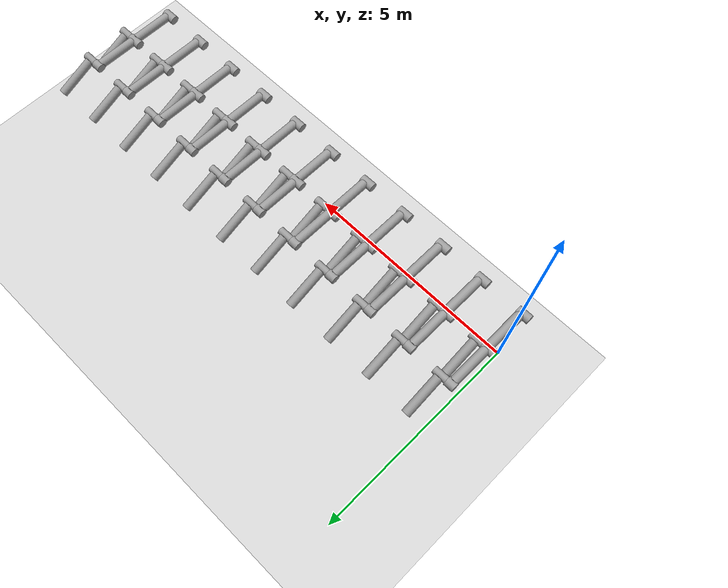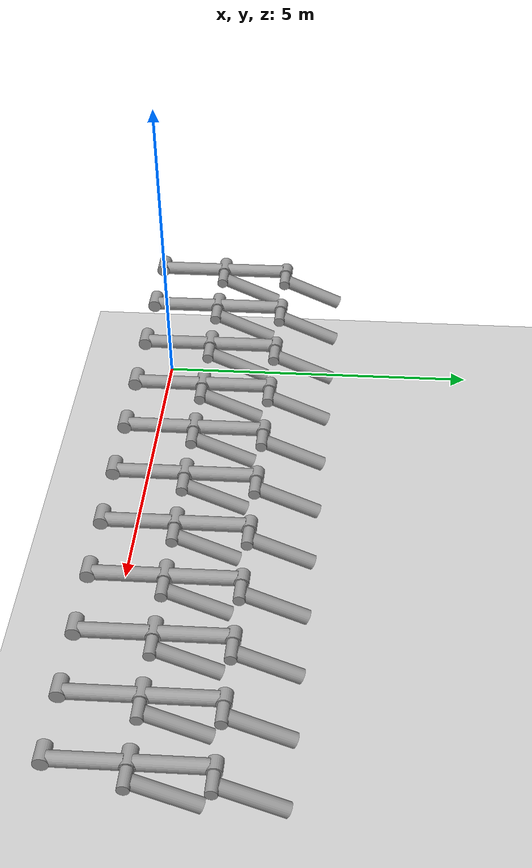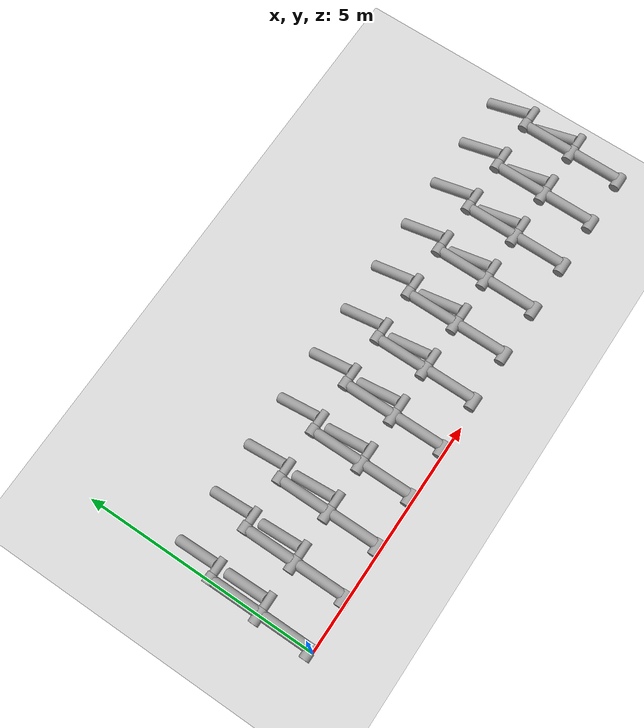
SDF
<sdf version="1.4">
 <world name="default">
  <model name="ground_plane">
   <static>true</static>
   <link name="link">
    <collision name="collision">
     <geometry><plane><normal>0 0 1</normal><size>100 100</size></plane></geometry>
     <surface><friction><ode><mu>100</mu><mu2>50</mu2></ode></friction></surface>
    </collision>
    <visual name="visual">
     <cast_shadows>false</cast_shadows>
     <geometry><plane><normal>0 0 1</normal><size>100 100</size></plane></geometry>
     <material>
      <script><uri>file://media/materials/scripts/gazebo.material</uri><name>Gazebo/Grey</name></script>
     </material>
    </visual>
   </link>
  </model>
  <model name="double_pendulum_with_base">
   <link name="upper_link">
    <pose>0 0 2.1  -1.5708 0 0</pose>
    <inertial><pose>0 0 0.5  0 0 0</pose></inertial>
    <visual name="vis_upper_joint">
     <pose>-0.05 0 0  0 1.5708 0</pose>
     <geometry><cylinder><radius>0.1</radius><length>0.3</length></cylinder></geometry>
     <material>
      <script><uri>file://media/materials/scripts/gazebo.material</uri><name>Gazebo/Grey</name></script>
     </material>
    </visual>
    <visual name="vis_lower_joint">
     <pose>0 0 1.0  0 1.5708 0</pose>
     <geometry><cylinder><radius>0.1</radius><length>0.2</length></cylinder></geometry>
     <material>
      <script><uri>file://media/materials/scripts/gazebo.material</uri><name>Gazebo/Grey</name></script>
     </material>
    </visual>
    <visual name="vis_cylinder">
     <pose>0 0 0.5  0 0 0</pose>
     <geometry><cylinder><radius>0.1</radius><length>0.9</length></cylinder></geometry>
     <material>
      <script><uri>file://media/materials/scripts/gazebo.material</uri><name>Gazebo/Grey</name></script>
     </material>
    </visual>
   </link>
   <link name="lower_link">
    <pose>0.25 1.0 2.1  -2 0 0</pose>
    <inertial><pose>0 0 0.5  0 0 0</pose></inertial>
    <visual name="vis_lower_joint">
     <pose>0 0 0  0 1.5708 0</pose>
     <geometry><cylinder><radius>0.08</radius><length>0.3</length></cylinder></geometry>
     <material>
      <script><uri>file://media/materials/scripts/gazebo.material</uri><name>Gazebo/Grey</name></script>
     </material>
    </visual>
    <visual name="vis_cylinder">
     <pose>0 0 0.5  0 0 0</pose>
     <geometry><cylinder><radius>0.1</radius><length>0.9</length></cylinder></geometry>
     <material>
      <script><uri>file://media/materials/scripts/gazebo.material</uri><name>Gazebo/Grey</name></script>
     </material>
    </visual>
   </link>
   <joint name="upper_joint" type="revolute">
    <parent>world</parent>
    <child>upper_link</child>
    <axis><xyz>1.0 0 0</xyz></axis>
   </joint>
   <joint name="lower_joint" type="revolute">
    <parent>upper_link</parent>
    <child>lower_link</child>
    <axis><xyz>1.0 0 0</xyz></axis>
   </joint>
  </model>
  <model name="double_pendulum_with_base1">
   <pose>1 0 0 0 0 0</pose>
   <link name="upper_link">
    <pose>0 0 2.1  -1.5708 0 0</pose>
    <inertial><pose>0 0 0.5  0 0 0</pose></inertial>
    <visual name="vis_upper_joint">
     <pose>-0.05 0 0  0 1.5708 0</pose>
     <geometry><cylinder><radius>0.1</radius><length>0.3</length></cylinder></geometry>
     <material>
      <script><uri>file://media/materials/scripts/gazebo.material</uri><name>Gazebo/Grey</name></script>
     </material>
    </visual>
    <visual name="vis_lower_joint">
     <pose>0 0 1.0  0 1.5708 0</pose>
     <geometry><cylinder><radius>0.1</radius><length>0.2</length></cylinder></geometry>
     <material>
      <script><uri>file://media/materials/scripts/gazebo.material</uri><name>Gazebo/Grey</name></script>
     </material>
    </visual>
    <visual name="vis_cylinder">
     <pose>0 0 0.5  0 0 0</pose>
     <geometry><cylinder><radius>0.1</radius><length>0.9</length></cylinder></geometry>
     <material>
      <script><uri>file://media/materials/scripts/gazebo.material</uri><name>Gazebo/Grey</name></script>
     </material>
    </visual>
   </link>
   <link name="lower_link">
    <pose>0.25 1.0 2.1  -2 0 0</pose>
    <inertial><pose>0 0 0.5  0 0 0</pose></inertial>
    <visual name="vis_lower_joint">
     <pose>0 0 0  0 1.5708 0</pose>
     <geometry><cylinder><radius>0.08</radius><length>0.3</length></cylinder></geometry>
     <material>
      <script><uri>file://media/materials/scripts/gazebo.material</uri><name>Gazebo/Grey</name></script>
     </material>
    </visual>
    <visual name="vis_cylinder">
     <pose>0 0 0.5  0 0 0</pose>
     <geometry><cylinder><radius>0.1</radius><length>0.9</length></cylinder></geometry>
     <material>
      <script><uri>file://media/materials/scripts/gazebo.material</uri><name>Gazebo/Grey</name></script>
     </material>
    </visual>
   </link>
   <joint name="upper_joint" type="revolute">
    <parent>world</parent>
    <child>upper_link</child>
    <axis><xyz>1.0 0 0</xyz></axis>
   </joint>
   <joint name="lower_joint" type="revolute">
    <parent>upper_link</parent>
    <child>lower_link</child>
    <axis><xyz>1.0 0 0</xyz></axis>
   </joint>
  </model>
  <model name="double_pendulum_with_base2">
   <pose>2 0 0 0 0 0</pose>
   <link name="upper_link">
    <pose>0 0 2.1  -1.5708 0 0</pose>
    <inertial><pose>0 0 0.5  0 0 0</pose></inertial>
    <visual name="vis_upper_joint">
     <pose>-0.05 0 0  0 1.5708 0</pose>
     <geometry><cylinder><radius>0.1</radius><length>0.3</length></cylinder></geometry>
     <material>
      <script><uri>file://media/materials/scripts/gazebo.material</uri><name>Gazebo/Grey</name></script>
     </material>
    </visual>
    <visual name="vis_lower_joint">
     <pose>0 0 1.0  0 1.5708 0</pose>
     <geometry><cylinder><radius>0.1</radius><length>0.2</length></cylinder></geometry>
     <material>
      <script><uri>file://media/materials/scripts/gazebo.material</uri><name>Gazebo/Grey</name></script>
     </material>
    </visual>
    <visual name="vis_cylinder">
     <pose>0 0 0.5  0 0 0</pose>
     <geometry><cylinder><radius>0.1</radius><length>0.9</length></cylinder></geometry>
     <material>
      <script><uri>file://media/materials/scripts/gazebo.material</uri><name>Gazebo/Grey</name></script>
     </material>
    </visual>
   </link>
   <link name="lower_link">
    <pose>0.25 1.0 2.1  -2 0 0</pose>
    <inertial><pose>0 0 0.5  0 0 0</pose></inertial>
    <visual name="vis_lower_joint">
     <pose>0 0 0  0 1.5708 0</pose>
     <geometry><cylinder><radius>0.08</radius><length>0.3</length></cylinder></geometry>
     <material>
      <script><uri>file://media/materials/scripts/gazebo.material</uri><name>Gazebo/Grey</name></script>
     </material>
    </visual>
    <visual name="vis_cylinder">
     <pose>0 0 0.5  0 0 0</pose>
     <geometry><cylinder><radius>0.1</radius><length>0.9</length></cylinder></geometry>
     <material>
      <script><uri>file://media/materials/scripts/gazebo.material</uri><name>Gazebo/Grey</name></script>
     </material>
    </visual>
   </link>
   <joint name="upper_joint" type="revolute">
    <parent>world</parent>
    <child>upper_link</child>
    <axis><xyz>1.0 0 0</xyz></axis>
   </joint>
   <joint name="lower_joint" type="revolute">
    <parent>upper_link</parent>
    <child>lower_link</child>
    <axis><xyz>1.0 0 0</xyz></axis>
   </joint>
  </model>
  <model name="double_pendulum_with_base3">
   <pose>3 0 0 0 0 0</pose>
   <link name="upper_link">
    <pose>0 0 2.1  -1.5708 0 0</pose>
    <inertial><pose>0 0 0.5  0 0 0</pose></inertial>
    <visual name="vis_upper_joint">
     <pose>-0.05 0 0  0 1.5708 0</pose>
     <geometry><cylinder><radius>0.1</radius><length>0.3</length></cylinder></geometry>
     <material>
      <script><uri>file://media/materials/scripts/gazebo.material</uri><name>Gazebo/Grey</name></script>
     </material>
    </visual>
    <visual name="vis_lower_joint">
     <pose>0 0 1.0  0 1.5708 0</pose>
     <geometry><cylinder><radius>0.1</radius><length>0.2</length></cylinder></geometry>
     <material>
      <script><uri>file://media/materials/scripts/gazebo.material</uri><name>Gazebo/Grey</name></script>
     </material>
    </visual>
    <visual name="vis_cylinder">
     <pose>0 0 0.5  0 0 0</pose>
     <geometry><cylinder><radius>0.1</radius><length>0.9</length></cylinder></geometry>
     <material>
      <script><uri>file://media/materials/scripts/gazebo.material</uri><name>Gazebo/Grey</name></script>
     </material>
    </visual>
   </link>
   <link name="lower_link">
    <pose>0.25 1.0 2.1  -2 0 0</pose>
    <inertial><pose>0 0 0.5  0 0 0</pose></inertial>
    <visual name="vis_lower_joint">
     <pose>0 0 0  0 1.5708 0</pose>
     <geometry><cylinder><radius>0.08</radius><length>0.3</length></cylinder></geometry>
     <material>
      <script><uri>file://media/materials/scripts/gazebo.material</uri><name>Gazebo/Grey</name></script>
     </material>
    </visual>
    <visual name="vis_cylinder">
     <pose>0 0 0.5  0 0 0</pose>
     <geometry><cylinder><radius>0.1</radius><length>0.9</length></cylinder></geometry>
     <material>
      <script><uri>file://media/materials/scripts/gazebo.material</uri><name>Gazebo/Grey</name></script>
     </material>
    </visual>
   </link>
   <joint name="upper_joint" type="revolute">
    <parent>world</parent>
    <child>upper_link</child>
    <axis><xyz>1.0 0 0</xyz></axis>
   </joint>
   <joint name="lower_joint" type="revolute">
    <parent>upper_link</parent>
    <child>lower_link</child>
    <axis><xyz>1.0 0 0</xyz></axis>
   </joint>
  </model>
  <model name="double_pendulum_with_base4">
   <pose>4 0 0 0 0 0</pose>
   <link name="upper_link">
    <pose>0 0 2.1  -1.5708 0 0</pose>
    <inertial><pose>0 0 0.5  0 0 0</pose></inertial>
    <visual name="vis_upper_joint">
     <pose>-0.05 0 0  0 1.5708 0</pose>
     <geometry><cylinder><radius>0.1</radius><length>0.3</length></cylinder></geometry>
     <material>
      <script><uri>file://media/materials/scripts/gazebo.material</uri><name>Gazebo/Grey</name></script>
     </material>
    </visual>
    <visual name="vis_lower_joint">
     <pose>0 0 1.0  0 1.5708 0</pose>
     <geometry><cylinder><radius>0.1</radius><length>0.2</length></cylinder></geometry>
     <material>
      <script><uri>file://media/materials/scripts/gazebo.material</uri><name>Gazebo/Grey</name></script>
     </material>
    </visual>
    <visual name="vis_cylinder">
     <pose>0 0 0.5  0 0 0</pose>
     <geometry><cylinder><radius>0.1</radius><length>0.9</length></cylinder></geometry>
     <material>
      <script><uri>file://media/materials/scripts/gazebo.material</uri><name>Gazebo/Grey</name></script>
     </material>
    </visual>
   </link>
   <link name="lower_link">
    <pose>0.25 1.0 2.1  -2 0 0</pose>
    <inertial><pose>0 0 0.5  0 0 0</pose></inertial>
    <visual name="vis_lower_joint">
     <pose>0 0 0  0 1.5708 0</pose>
     <geometry><cylinder><radius>0.08</radius><length>0.3</length></cylinder></geometry>
     <material>
      <script><uri>file://media/materials/scripts/gazebo.material</uri><name>Gazebo/Grey</name></script>
     </material>
    </visual>
    <visual name="vis_cylinder">
     <pose>0 0 0.5  0 0 0</pose>
     <geometry><cylinder><radius>0.1</radius><length>0.9</length></cylinder></geometry>
     <material>
      <script><uri>file://media/materials/scripts/gazebo.material</uri><name>Gazebo/Grey</name></script>
     </material>
    </visual>
   </link>
   <joint name="upper_joint" type="revolute">
    <parent>world</parent>
    <child>upper_link</child>
    <axis><xyz>1.0 0 0</xyz></axis>
   </joint>
   <joint name="lower_joint" type="revolute">
    <parent>upper_link</parent>
    <child>lower_link</child>
    <axis><xyz>1.0 0 0</xyz></axis>
   </joint>
  </model>
  <model name="double_pendulum_with_base5">
   <pose>5 0 0 0 0 0</pose>
   <link name="upper_link">
    <pose>0 0 2.1  -1.5708 0 0</pose>
    <inertial><pose>0 0 0.5  0 0 0</pose></inertial>
    <visual name="vis_upper_joint">
     <pose>-0.05 0 0  0 1.5708 0</pose>
     <geometry><cylinder><radius>0.1</radius><length>0.3</length></cylinder></geometry>
     <material>
      <script><uri>file://media/materials/scripts/gazebo.material</uri><name>Gazebo/Grey</name></script>
     </material>
    </visual>
    <visual name="vis_lower_joint">
     <pose>0 0 1.0  0 1.5708 0</pose>
     <geometry><cylinder><radius>0.1</radius><length>0.2</length></cylinder></geometry>
     <material>
      <script><uri>file://media/materials/scripts/gazebo.material</uri><name>Gazebo/Grey</name></script>
     </material>
    </visual>
    <visual name="vis_cylinder">
     <pose>0 0 0.5  0 0 0</pose>
     <geometry><cylinder><radius>0.1</radius><length>0.9</length></cylinder></geometry>
     <material>
      <script><uri>file://media/materials/scripts/gazebo.material</uri><name>Gazebo/Grey</name></script>
     </material>
    </visual>
   </link>
   <link name="lower_link">
    <pose>0.25 1.0 2.1  -2 0 0</pose>
    <inertial><pose>0 0 0.5  0 0 0</pose></inertial>
    <visual name="vis_lower_joint">
     <pose>0 0 0  0 1.5708 0</pose>
     <geometry><cylinder><radius>0.08</radius><length>0.3</length></cylinder></geometry>
     <material>
      <script><uri>file://media/materials/scripts/gazebo.material</uri><name>Gazebo/Grey</name></script>
     </material>
    </visual>
    <visual name="vis_cylinder">
     <pose>0 0 0.5  0 0 0</pose>
     <geometry><cylinder><radius>0.1</radius><length>0.9</length></cylinder></geometry>
     <material>
      <script><uri>file://media/materials/scripts/gazebo.material</uri><name>Gazebo/Grey</name></script>
     </material>
    </visual>
   </link>
   <joint name="upper_joint" type="revolute">
    <parent>world</parent>
    <child>upper_link</child>
    <axis><xyz>1.0 0 0</xyz></axis>
   </joint>
   <joint name="lower_joint" type="revolute">
    <parent>upper_link</parent>
    <child>lower_link</child>
    <axis><xyz>1.0 0 0</xyz></axis>
   </joint>
  </model>
  <model name="double_pendulum_with_base6">
   <pose>6 0 0 0 0 0</pose>
   <link name="upper_link">
    <pose>0 0 2.1  -1.5708 0 0</pose>
    <inertial><pose>0 0 0.5  0 0 0</pose></inertial>
    <visual name="vis_upper_joint">
     <pose>-0.05 0 0  0 1.5708 0</pose>
     <geometry><cylinder><radius>0.1</radius><length>0.3</length></cylinder></geometry>
     <material>
      <script><uri>file://media/materials/scripts/gazebo.material</uri><name>Gazebo/Grey</name></script>
     </material>
    </visual>
    <visual name="vis_lower_joint">
     <pose>0 0 1.0  0 1.5708 0</pose>
     <geometry><cylinder><radius>0.1</radius><length>0.2</length></cylinder></geometry>
     <material>
      <script><uri>file://media/materials/scripts/gazebo.material</uri><name>Gazebo/Grey</name></script>
     </material>
    </visual>
    <visual name="vis_cylinder">
     <pose>0 0 0.5  0 0 0</pose>
     <geometry><cylinder><radius>0.1</radius><length>0.9</length></cylinder></geometry>
     <material>
      <script><uri>file://media/materials/scripts/gazebo.material</uri><name>Gazebo/Grey</name></script>
     </material>
    </visual>
   </link>
   <link name="lower_link">
    <pose>0.25 1.0 2.1  -2 0 0</pose>
    <inertial><pose>0 0 0.5  0 0 0</pose></inertial>
    <visual name="vis_lower_joint">
     <pose>0 0 0  0 1.5708 0</pose>
     <geometry><cylinder><radius>0.08</radius><length>0.3</length></cylinder></geometry>
     <material>
      <script><uri>file://media/materials/scripts/gazebo.material</uri><name>Gazebo/Grey</name></script>
     </material>
    </visual>
    <visual name="vis_cylinder">
     <pose>0 0 0.5  0 0 0</pose>
     <geometry><cylinder><radius>0.1</radius><length>0.9</length></cylinder></geometry>
     <material>
      <script><uri>file://media/materials/scripts/gazebo.material</uri><name>Gazebo/Grey</name></script>
     </material>
    </visual>
   </link>
   <joint name="upper_joint" type="revolute">
    <parent>world</parent>
    <child>upper_link</child>
    <axis><xyz>1.0 0 0</xyz></axis>
   </joint>
   <joint name="lower_joint" type="revolute">
    <parent>upper_link</parent>
    <child>lower_link</child>
    <axis><xyz>1.0 0 0</xyz></axis>
   </joint>
  </model>
  <model name="double_pendulum_with_base7">
   <pose>7 0 0 0 0 0</pose>
   <link name="upper_link">
    <pose>0 0 2.1  -1.5708 0 0</pose>
    <inertial><pose>0 0 0.5  0 0 0</pose></inertial>
    <visual name="vis_upper_joint">
     <pose>-0.05 0 0  0 1.5708 0</pose>
     <geometry><cylinder><radius>0.1</radius><length>0.3</length></cylinder></geometry>
     <material>
      <script><uri>file://media/materials/scripts/gazebo.material</uri><name>Gazebo/Grey</name></script>
     </material>
    </visual>
    <visual name="vis_lower_joint">
     <pose>0 0 1.0  0 1.5708 0</pose>
     <geometry><cylinder><radius>0.1</radius><length>0.2</length></cylinder></geometry>
     <material>
      <script><uri>file://media/materials/scripts/gazebo.material</uri><name>Gazebo/Grey</name></script>
     </material>
    </visual>
    <visual name="vis_cylinder">
     <pose>0 0 0.5  0 0 0</pose>
     <geometry><cylinder><radius>0.1</radius><length>0.9</length></cylinder></geometry>
     <material>
      <script><uri>file://media/materials/scripts/gazebo.material</uri><name>Gazebo/Grey</name></script>
     </material>
    </visual>
   </link>
   <link name="lower_link">
    <pose>0.25 1.0 2.1  -2 0 0</pose>
    <inertial><pose>0 0 0.5  0 0 0</pose></inertial>
    <visual name="vis_lower_joint">
     <pose>0 0 0  0 1.5708 0</pose>
     <geometry><cylinder><radius>0.08</radius><length>0.3</length></cylinder></geometry>
     <material>
      <script><uri>file://media/materials/scripts/gazebo.material</uri><name>Gazebo/Grey</name></script>
     </material>
    </visual>
    <visual name="vis_cylinder">
     <pose>0 0 0.5  0 0 0</pose>
     <geometry><cylinder><radius>0.1</radius><length>0.9</length></cylinder></geometry>
     <material>
      <script><uri>file://media/materials/scripts/gazebo.material</uri><name>Gazebo/Grey</name></script>
     </material>
    </visual>
   </link>
   <joint name="upper_joint" type="revolute">
    <parent>world</parent>
    <child>upper_link</child>
    <axis><xyz>1.0 0 0</xyz></axis>
   </joint>
   <joint name="lower_joint" type="revolute">
    <parent>upper_link</parent>
    <child>lower_link</child>
    <axis><xyz>1.0 0 0</xyz></axis>
   </joint>
  </model>
  <model name="double_pendulum_with_base8">
   <pose>8 0 0 0 0 0</pose>
   <link name="upper_link">
    <pose>0 0 2.1  -1.5708 0 0</pose>
    <inertial><pose>0 0 0.5  0 0 0</pose></inertial>
    <visual name="vis_upper_joint">
     <pose>-0.05 0 0  0 1.5708 0</pose>
     <geometry><cylinder><radius>0.1</radius><length>0.3</length></cylinder></geometry>
     <material>
      <script><uri>file://media/materials/scripts/gazebo.material</uri><name>Gazebo/Grey</name></script>
     </material>
    </visual>
    <visual name="vis_lower_joint">
     <pose>0 0 1.0  0 1.5708 0</pose>
     <geometry><cylinder><radius>0.1</radius><length>0.2</length></cylinder></geometry>
     <material>
      <script><uri>file://media/materials/scripts/gazebo.material</uri><name>Gazebo/Grey</name></script>
     </material>
    </visual>
    <visual name="vis_cylinder">
     <pose>0 0 0.5  0 0 0</pose>
     <geometry><cylinder><radius>0.1</radius><length>0.9</length></cylinder></geometry>
     <material>
      <script><uri>file://media/materials/scripts/gazebo.material</uri><name>Gazebo/Grey</name></script>
     </material>
    </visual>
   </link>
   <link name="lower_link">
    <pose>0.25 1.0 2.1  -2 0 0</pose>
    <inertial><pose>0 0 0.5  0 0 0</pose></inertial>
    <visual name="vis_lower_joint">
     <pose>0 0 0  0 1.5708 0</pose>
     <geometry><cylinder><radius>0.08</radius><length>0.3</length></cylinder></geometry>
     <material>
      <script><uri>file://media/materials/scripts/gazebo.material</uri><name>Gazebo/Grey</name></script>
     </material>
    </visual>
    <visual name="vis_cylinder">
     <pose>0 0 0.5  0 0 0</pose>
     <geometry><cylinder><radius>0.1</radius><length>0.9</length></cylinder></geometry>
     <material>
      <script><uri>file://media/materials/scripts/gazebo.material</uri><name>Gazebo/Grey</name></script>
     </material>
    </visual>
   </link>
   <joint name="upper_joint" type="revolute">
    <parent>world</parent>
    <child>upper_link</child>
    <axis><xyz>1.0 0 0</xyz></axis>
   </joint>
   <joint name="lower_joint" type="revolute">
    <parent>upper_link</parent>
    <child>lower_link</child>
    <axis><xyz>1.0 0 0</xyz></axis>
   </joint>
  </model>
  <model name="double_pendulum_with_base9">
   <pose>9 0 0 0 0 0</pose>
   <link name="upper_link">
    <pose>0 0 2.1  -1.5708 0 0</pose>
    <inertial><pose>0 0 0.5  0 0 0</pose></inertial>
    <visual name="vis_upper_joint">
     <pose>-0.05 0 0  0 1.5708 0</pose>
     <geometry><cylinder><radius>0.1</radius><length>0.3</length></cylinder></geometry>
     <material>
      <script><uri>file://media/materials/scripts/gazebo.material</uri><name>Gazebo/Grey</name></script>
     </material>
    </visual>
    <visual name="vis_lower_joint">
     <pose>0 0 1.0  0 1.5708 0</pose>
     <geometry><cylinder><radius>0.1</radius><length>0.2</length></cylinder></geometry>
     <material>
      <script><uri>file://media/materials/scripts/gazebo.material</uri><name>Gazebo/Grey</name></script>
     </material>
    </visual>
    <visual name="vis_cylinder">
     <pose>0 0 0.5  0 0 0</pose>
     <geometry><cylinder><radius>0.1</radius><length>0.9</length></cylinder></geometry>
     <material>
      <script><uri>file://media/materials/scripts/gazebo.material</uri><name>Gazebo/Grey</name></script>
     </material>
    </visual>
   </link>
   <link name="lower_link">
    <pose>0.25 1.0 2.1  -2 0 0</pose>
    <inertial><pose>0 0 0.5  0 0 0</pose></inertial>
    <visual name="vis_lower_joint">
     <pose>0 0 0  0 1.5708 0</pose>
     <geometry><cylinder><radius>0.08</radius><length>0.3</length></cylinder></geometry>
     <material>
      <script><uri>file://media/materials/scripts/gazebo.material</uri><name>Gazebo/Grey</name></script>
     </material>
    </visual>
    <visual name="vis_cylinder">
     <pose>0 0 0.5  0 0 0</pose>
     <geometry><cylinder><radius>0.1</radius><length>0.9</length></cylinder></geometry>
     <material>
      <script><uri>file://media/materials/scripts/gazebo.material</uri><name>Gazebo/Grey</name></script>
     </material>
    </visual>
   </link>
   <joint name="upper_joint" type="revolute">
    <parent>world</parent>
    <child>upper_link</child>
    <axis><xyz>1.0 0 0</xyz></axis>
   </joint>
   <joint name="lower_joint" type="revolute">
    <parent>upper_link</parent>
    <child>lower_link</child>
    <axis><xyz>1.0 0 0</xyz></axis>
   </joint>
  </model>
  <model name="double_pendulum_with_base10">
   <pose>10 0 0 0 0 0</pose>
   <link name="upper_link">
    <pose>0 0 2.1  -1.5708 0 0</pose>
    <inertial><pose>0 0 0.5  0 0 0</pose></inertial>
    <visual name="vis_upper_joint">
     <pose>-0.05 0 0  0 1.5708 0</pose>
     <geometry><cylinder><radius>0.1</radius><length>0.3</length></cylinder></geometry>
     <material>
      <script><uri>file://media/materials/scripts/gazebo.material</uri><name>Gazebo/Grey</name></script>
     </material>
    </visual>
    <visual name="vis_lower_joint">
     <pose>0 0 1.0  0 1.5708 0</pose>
     <geometry><cylinder><radius>0.1</radius><length>0.2</length></cylinder></geometry>
     <material>
      <script><uri>file://media/materials/scripts/gazebo.material</uri><name>Gazebo/Grey</name></script>
     </material>
    </visual>
    <visual name="vis_cylinder">
     <pose>0 0 0.5  0 0 0</pose>
     <geometry><cylinder><radius>0.1</radius><length>0.9</length></cylinder></geometry>
     <material>
      <script><uri>file://media/materials/scripts/gazebo.material</uri><name>Gazebo/Grey</name></script>
     </material>
    </visual>
   </link>
   <link name="lower_link">
    <pose>0.25 1.0 2.1  -2 0 0</pose>
    <inertial><pose>0 0 0.5  0 0 0</pose></inertial>
    <visual name="vis_lower_joint">
     <pose>0 0 0  0 1.5708 0</pose>
     <geometry><cylinder><radius>0.08</radius><length>0.3</length></cylinder></geometry>
     <material>
      <script><uri>file://media/materials/scripts/gazebo.material</uri><name>Gazebo/Grey</name></script>
     </material>
    </visual>
    <visual name="vis_cylinder">
     <pose>0 0 0.5  0 0 0</pose>
     <geometry><cylinder><radius>0.1</radius><length>0.9</length></cylinder></geometry>
     <material>
      <script><uri>file://media/materials/scripts/gazebo.material</uri><name>Gazebo/Grey</name></script>
     </material>
    </visual>
   </link>
   <joint name="upper_joint" type="revolute">
    <parent>world</parent>
    <child>upper_link</child>
    <axis><xyz>1.0 0 0</xyz></axis>
   </joint>
   <joint name="lower_joint" type="revolute">
    <parent>upper_link</parent>
    <child>lower_link</child>
    <axis><xyz>1.0 0 0</xyz></axis>
   </joint>
  </model>
  <model name="double_pendulum_with_baseb">
   <pose>0 1 0 0 0 0</pose>
   <link name="upper_link">
    <pose>0 0 2.1  -1.5708 0 0</pose>
    <inertial><pose>0 0 0.5  0 0 0</pose></inertial>
    <visual name="vis_upper_joint">
     <pose>-0.05 0 0  0 1.5708 0</pose>
     <geometry><cylinder><radius>0.1</radius><length>0.3</length></cylinder></geometry>
     <material>
      <script><uri>file://media/materials/scripts/gazebo.material</uri><name>Gazebo/Grey</name></script>
     </material>
    </visual>
    <visual name="vis_lower_joint">
     <pose>0 0 1.0  0 1.5708 0</pose>
     <geometry><cylinder><radius>0.1</radius><length>0.2</length></cylinder></geometry>
     <material>
      <script><uri>file://media/materials/scripts/gazebo.material</uri><name>Gazebo/Grey</name></script>
     </material>
    </visual>
    <visual name="vis_cylinder">
     <pose>0 0 0.5  0 0 0</pose>
     <geometry><cylinder><radius>0.1</radius><length>0.9</length></cylinder></geometry>
     <material>
      <script><uri>file://media/materials/scripts/gazebo.material</uri><name>Gazebo/Grey</name></script>
     </material>
    </visual>
   </link>
   <link name="lower_link">
    <pose>0.25 1.0 2.1  -2 0 0</pose>
    <inertial><pose>0 0 0.5  0 0 0</pose></inertial>
    <visual name="vis_lower_joint">
     <pose>0 0 0  0 1.5708 0</pose>
     <geometry><cylinder><radius>0.08</radius><length>0.3</length></cylinder></geometry>
     <material>
      <script><uri>file://media/materials/scripts/gazebo.material</uri><name>Gazebo/Grey</name></script>
     </material>
    </visual>
    <visual name="vis_cylinder">
     <pose>0 0 0.5  0 0 0</pose>
     <geometry><cylinder><radius>0.1</radius><length>0.9</length></cylinder></geometry>
     <material>
      <script><uri>file://media/materials/scripts/gazebo.material</uri><name>Gazebo/Grey</name></script>
     </material>
    </visual>
   </link>
   <joint name="upper_joint" type="revolute">
    <parent>world</parent>
    <child>upper_link</child>
    <axis><xyz>1.0 0 0</xyz></axis>
   </joint>
   <joint name="lower_joint" type="revolute">
    <parent>upper_link</parent>
    <child>lower_link</child>
    <axis><xyz>1.0 0 0</xyz></axis>
   </joint>
  </model>
  <model name="double_pendulum_with_base1b">
   <pose>1 1 0 0 0 0</pose>
   <link name="upper_link">
    <pose>0 0 2.1  -1.5708 0 0</pose>
    <inertial><pose>0 0 0.5  0 0 0</pose></inertial>
    <visual name="vis_upper_joint">
     <pose>-0.05 0 0  0 1.5708 0</pose>
     <geometry><cylinder><radius>0.1</radius><length>0.3</length></cylinder></geometry>
     <material>
      <script><uri>file://media/materials/scripts/gazebo.material</uri><name>Gazebo/Grey</name></script>
     </material>
    </visual>
    <visual name="vis_lower_joint">
     <pose>0 0 1.0  0 1.5708 0</pose>
     <geometry><cylinder><radius>0.1</radius><length>0.2</length></cylinder></geometry>
     <material>
      <script><uri>file://media/materials/scripts/gazebo.material</uri><name>Gazebo/Grey</name></script>
     </material>
    </visual>
    <visual name="vis_cylinder">
     <pose>0 0 0.5  0 0 0</pose>
     <geometry><cylinder><radius>0.1</radius><length>0.9</length></cylinder></geometry>
     <material>
      <script><uri>file://media/materials/scripts/gazebo.material</uri><name>Gazebo/Grey</name></script>
     </material>
    </visual>
   </link>
   <link name="lower_link">
    <pose>0.25 1.0 2.1  -2 0 0</pose>
    <inertial><pose>0 0 0.5  0 0 0</pose></inertial>
    <visual name="vis_lower_joint">
     <pose>0 0 0  0 1.5708 0</pose>
     <geometry><cylinder><radius>0.08</radius><length>0.3</length></cylinder></geometry>
     <material>
      <script><uri>file://media/materials/scripts/gazebo.material</uri><name>Gazebo/Grey</name></script>
     </material>
    </visual>
    <visual name="vis_cylinder">
     <pose>0 0 0.5  0 0 0</pose>
     <geometry><cylinder><radius>0.1</radius><length>0.9</length></cylinder></geometry>
     <material>
      <script><uri>file://media/materials/scripts/gazebo.material</uri><name>Gazebo/Grey</name></script>
     </material>
    </visual>
   </link>
   <joint name="upper_joint" type="revolute">
    <parent>world</parent>
    <child>upper_link</child>
    <axis><xyz>1.0 0 0</xyz></axis>
   </joint>
   <joint name="lower_joint" type="revolute">
    <parent>upper_link</parent>
    <child>lower_link</child>
    <axis><xyz>1.0 0 0</xyz></axis>
   </joint>
  </model>
  <model name="double_pendulum_with_base2b">
   <pose>2 1 0 0 0 0</pose>
   <link name="upper_link">
    <pose>0 0 2.1  -1.5708 0 0</pose>
    <inertial><pose>0 0 0.5  0 0 0</pose></inertial>
    <visual name="vis_upper_joint">
     <pose>-0.05 0 0  0 1.5708 0</pose>
     <geometry><cylinder><radius>0.1</radius><length>0.3</length></cylinder></geometry>
     <material>
      <script><uri>file://media/materials/scripts/gazebo.material</uri><name>Gazebo/Grey</name></script>
     </material>
    </visual>
    <visual name="vis_lower_joint">
     <pose>0 0 1.0  0 1.5708 0</pose>
     <geometry><cylinder><radius>0.1</radius><length>0.2</length></cylinder></geometry>
     <material>
      <script><uri>file://media/materials/scripts/gazebo.material</uri><name>Gazebo/Grey</name></script>
     </material>
    </visual>
    <visual name="vis_cylinder">
     <pose>0 0 0.5  0 0 0</pose>
     <geometry><cylinder><radius>0.1</radius><length>0.9</length></cylinder></geometry>
     <material>
      <script><uri>file://media/materials/scripts/gazebo.material</uri><name>Gazebo/Grey</name></script>
     </material>
    </visual>
   </link>
   <link name="lower_link">
    <pose>0.25 1.0 2.1  -2 0 0</pose>
    <inertial><pose>0 0 0.5  0 0 0</pose></inertial>
    <visual name="vis_lower_joint">
     <pose>0 0 0  0 1.5708 0</pose>
     <geometry><cylinder><radius>0.08</radius><length>0.3</length></cylinder></geometry>
     <material>
      <script><uri>file://media/materials/scripts/gazebo.material</uri><name>Gazebo/Grey</name></script>
     </material>
    </visual>
    <visual name="vis_cylinder">
     <pose>0 0 0.5  0 0 0</pose>
     <geometry><cylinder><radius>0.1</radius><length>0.9</length></cylinder></geometry>
     <material>
      <script><uri>file://media/materials/scripts/gazebo.material</uri><name>Gazebo/Grey</name></script>
     </material>
    </visual>
   </link>
   <joint name="upper_joint" type="revolute">
    <parent>world</parent>
    <child>upper_link</child>
    <axis><xyz>1.0 0 0</xyz></axis>
   </joint>
   <joint name="lower_joint" type="revolute">
    <parent>upper_link</parent>
    <child>lower_link</child>
    <axis><xyz>1.0 0 0</xyz></axis>
   </joint>
  </model>
  <model name="double_pendulum_with_base3b">
   <pose>3 1 0 0 0 0</pose>
   <link name="upper_link">
    <pose>0 0 2.1  -1.5708 0 0</pose>
    <inertial><pose>0 0 0.5  0 0 0</pose></inertial>
    <visual name="vis_upper_joint">
     <pose>-0.05 0 0  0 1.5708 0</pose>
     <geometry><cylinder><radius>0.1</radius><length>0.3</length></cylinder></geometry>
     <material>
      <script><uri>file://media/materials/scripts/gazebo.material</uri><name>Gazebo/Grey</name></script>
     </material>
    </visual>
    <visual name="vis_lower_joint">
     <pose>0 0 1.0  0 1.5708 0</pose>
     <geometry><cylinder><radius>0.1</radius><length>0.2</length></cylinder></geometry>
     <material>
      <script><uri>file://media/materials/scripts/gazebo.material</uri><name>Gazebo/Grey</name></script>
     </material>
    </visual>
    <visual name="vis_cylinder">
     <pose>0 0 0.5  0 0 0</pose>
     <geometry><cylinder><radius>0.1</radius><length>0.9</length></cylinder></geometry>
     <material>
      <script><uri>file://media/materials/scripts/gazebo.material</uri><name>Gazebo/Grey</name></script>
     </material>
    </visual>
   </link>
   <link name="lower_link">
    <pose>0.25 1.0 2.1  -2 0 0</pose>
    <inertial><pose>0 0 0.5  0 0 0</pose></inertial>
    <visual name="vis_lower_joint">
     <pose>0 0 0  0 1.5708 0</pose>
     <geometry><cylinder><radius>0.08</radius><length>0.3</length></cylinder></geometry>
     <material>
      <script><uri>file://media/materials/scripts/gazebo.material</uri><name>Gazebo/Grey</name></script>
     </material>
    </visual>
    <visual name="vis_cylinder">
     <pose>0 0 0.5  0 0 0</pose>
     <geometry><cylinder><radius>0.1</radius><length>0.9</length></cylinder></geometry>
     <material>
      <script><uri>file://media/materials/scripts/gazebo.material</uri><name>Gazebo/Grey</name></script>
     </material>
    </visual>
   </link>
   <joint name="upper_joint" type="revolute">
    <parent>world</parent>
    <child>upper_link</child>
    <axis><xyz>1.0 0 0</xyz></axis>
   </joint>
   <joint name="lower_joint" type="revolute">
    <parent>upper_link</parent>
    <child>lower_link</child>
    <axis><xyz>1.0 0 0</xyz></axis>
   </joint>
  </model>
  <model name="double_pendulum_with_base4b">
   <pose>4 1 0 0 0 0</pose>
   <link name="upper_link">
    <pose>0 0 2.1  -1.5708 0 0</pose>
    <inertial><pose>0 0 0.5  0 0 0</pose></inertial>
    <visual name="vis_upper_joint">
     <pose>-0.05 0 0  0 1.5708 0</pose>
     <geometry><cylinder><radius>0.1</radius><length>0.3</length></cylinder></geometry>
     <material>
      <script><uri>file://media/materials/scripts/gazebo.material</uri><name>Gazebo/Grey</name></script>
     </material>
    </visual>
    <visual name="vis_lower_joint">
     <pose>0 0 1.0  0 1.5708 0</pose>
     <geometry><cylinder><radius>0.1</radius><length>0.2</length></cylinder></geometry>
     <material>
      <script><uri>file://media/materials/scripts/gazebo.material</uri><name>Gazebo/Grey</name></script>
     </material>
    </visual>
    <visual name="vis_cylinder">
     <pose>0 0 0.5  0 0 0</pose>
     <geometry><cylinder><radius>0.1</radius><length>0.9</length></cylinder></geometry>
     <material>
      <script><uri>file://media/materials/scripts/gazebo.material</uri><name>Gazebo/Grey</name></script>
     </material>
    </visual>
   </link>
   <link name="lower_link">
    <pose>0.25 1.0 2.1  -2 0 0</pose>
    <inertial><pose>0 0 0.5  0 0 0</pose></inertial>
    <visual name="vis_lower_joint">
     <pose>0 0 0  0 1.5708 0</pose>
     <geometry><cylinder><radius>0.08</radius><length>0.3</length></cylinder></geometry>
     <material>
      <script><uri>file://media/materials/scripts/gazebo.material</uri><name>Gazebo/Grey</name></script>
     </material>
    </visual>
    <visual name="vis_cylinder">
     <pose>0 0 0.5  0 0 0</pose>
     <geometry><cylinder><radius>0.1</radius><length>0.9</length></cylinder></geometry>
     <material>
      <script><uri>file://media/materials/scripts/gazebo.material</uri><name>Gazebo/Grey</name></script>
     </material>
    </visual>
   </link>
   <joint name="upper_joint" type="revolute">
    <parent>world</parent>
    <child>upper_link</child>
    <axis><xyz>1.0 0 0</xyz></axis>
   </joint>
   <joint name="lower_joint" type="revolute">
    <parent>upper_link</parent>
    <child>lower_link</child>
    <axis><xyz>1.0 0 0</xyz></axis>
   </joint>
  </model>
  <model name="double_pendulum_with_base5b">
   <pose>5 1 0 0 0 0</pose>
   <link name="upper_link">
    <pose>0 0 2.1  -1.5708 0 0</pose>
    <inertial><pose>0 0 0.5  0 0 0</pose></inertial>
    <visual name="vis_upper_joint">
     <pose>-0.05 0 0  0 1.5708 0</pose>
     <geometry><cylinder><radius>0.1</radius><length>0.3</length></cylinder></geometry>
     <material>
      <script><uri>file://media/materials/scripts/gazebo.material</uri><name>Gazebo/Grey</name></script>
     </material>
    </visual>
    <visual name="vis_lower_joint">
     <pose>0 0 1.0  0 1.5708 0</pose>
     <geometry><cylinder><radius>0.1</radius><length>0.2</length></cylinder></geometry>
     <material>
      <script><uri>file://media/materials/scripts/gazebo.material</uri><name>Gazebo/Grey</name></script>
     </material>
    </visual>
    <visual name="vis_cylinder">
     <pose>0 0 0.5  0 0 0</pose>
     <geometry><cylinder><radius>0.1</radius><length>0.9</length></cylinder></geometry>
     <material>
      <script><uri>file://media/materials/scripts/gazebo.material</uri><name>Gazebo/Grey</name></script>
     </material>
    </visual>
   </link>
   <link name="lower_link">
    <pose>0.25 1.0 2.1  -2 0 0</pose>
    <inertial><pose>0 0 0.5  0 0 0</pose></inertial>
    <visual name="vis_lower_joint">
     <pose>0 0 0  0 1.5708 0</pose>
     <geometry><cylinder><radius>0.08</radius><length>0.3</length></cylinder></geometry>
     <material>
      <script><uri>file://media/materials/scripts/gazebo.material</uri><name>Gazebo/Grey</name></script>
     </material>
    </visual>
    <visual name="vis_cylinder">
     <pose>0 0 0.5  0 0 0</pose>
     <geometry><cylinder><radius>0.1</radius><length>0.9</length></cylinder></geometry>
     <material>
      <script><uri>file://media/materials/scripts/gazebo.material</uri><name>Gazebo/Grey</name></script>
     </material>
    </visual>
   </link>
   <joint name="upper_joint" type="revolute">
    <parent>world</parent>
    <child>upper_link</child>
    <axis><xyz>1.0 0 0</xyz></axis>
   </joint>
   <joint name="lower_joint" type="revolute">
    <parent>upper_link</parent>
    <child>lower_link</child>
    <axis><xyz>1.0 0 0</xyz></axis>
   </joint>
  </model>
  <model name="double_pendulum_with_base6b">
   <pose>6 1 0 0 0 0</pose>
   <link name="upper_link">
    <pose>0 0 2.1  -1.5708 0 0</pose>
    <inertial><pose>0 0 0.5  0 0 0</pose></inertial>
    <visual name="vis_upper_joint">
     <pose>-0.05 0 0  0 1.5708 0</pose>
     <geometry><cylinder><radius>0.1</radius><length>0.3</length></cylinder></geometry>
     <material>
      <script><uri>file://media/materials/scripts/gazebo.material</uri><name>Gazebo/Grey</name></script>
     </material>
    </visual>
    <visual name="vis_lower_joint">
     <pose>0 0 1.0  0 1.5708 0</pose>
     <geometry><cylinder><radius>0.1</radius><length>0.2</length></cylinder></geometry>
     <material>
      <script><uri>file://media/materials/scripts/gazebo.material</uri><name>Gazebo/Grey</name></script>
     </material>
    </visual>
    <visual name="vis_cylinder">
     <pose>0 0 0.5  0 0 0</pose>
     <geometry><cylinder><radius>0.1</radius><length>0.9</length></cylinder></geometry>
     <material>
      <script><uri>file://media/materials/scripts/gazebo.material</uri><name>Gazebo/Grey</name></script>
     </material>
    </visual>
   </link>
   <link name="lower_link">
    <pose>0.25 1.0 2.1  -2 0 0</pose>
    <inertial><pose>0 0 0.5  0 0 0</pose></inertial>
    <visual name="vis_lower_joint">
     <pose>0 0 0  0 1.5708 0</pose>
     <geometry><cylinder><radius>0.08</radius><length>0.3</length></cylinder></geometry>
     <material>
      <script><uri>file://media/materials/scripts/gazebo.material</uri><name>Gazebo/Grey</name></script>
     </material>
    </visual>
    <visual name="vis_cylinder">
     <pose>0 0 0.5  0 0 0</pose>
     <geometry><cylinder><radius>0.1</radius><length>0.9</length></cylinder></geometry>
     <material>
      <script><uri>file://media/materials/scripts/gazebo.material</uri><name>Gazebo/Grey</name></script>
     </material>
    </visual>
   </link>
   <joint name="upper_joint" type="revolute">
    <parent>world</parent>
    <child>upper_link</child>
    <axis><xyz>1.0 0 0</xyz></axis>
   </joint>
   <joint name="lower_joint" type="revolute">
    <parent>upper_link</parent>
    <child>lower_link</child>
    <axis><xyz>1.0 0 0</xyz></axis>
   </joint>
  </model>
  <model name="double_pendulum_with_base7b">
   <pose>7 1 0 0 0 0</pose>
   <link name="upper_link">
    <pose>0 0 2.1  -1.5708 0 0</pose>
    <inertial><pose>0 0 0.5  0 0 0</pose></inertial>
    <visual name="vis_upper_joint">
     <pose>-0.05 0 0  0 1.5708 0</pose>
     <geometry><cylinder><radius>0.1</radius><length>0.3</length></cylinder></geometry>
     <material>
      <script><uri>file://media/materials/scripts/gazebo.material</uri><name>Gazebo/Grey</name></script>
     </material>
    </visual>
    <visual name="vis_lower_joint">
     <pose>0 0 1.0  0 1.5708 0</pose>
     <geometry><cylinder><radius>0.1</radius><length>0.2</length></cylinder></geometry>
     <material>
      <script><uri>file://media/materials/scripts/gazebo.material</uri><name>Gazebo/Grey</name></script>
     </material>
    </visual>
    <visual name="vis_cylinder">
     <pose>0 0 0.5  0 0 0</pose>
     <geometry><cylinder><radius>0.1</radius><length>0.9</length></cylinder></geometry>
     <material>
      <script><uri>file://media/materials/scripts/gazebo.material</uri><name>Gazebo/Grey</name></script>
     </material>
    </visual>
   </link>
   <link name="lower_link">
    <pose>0.25 1.0 2.1  -2 0 0</pose>
    <inertial><pose>0 0 0.5  0 0 0</pose></inertial>
    <visual name="vis_lower_joint">
     <pose>0 0 0  0 1.5708 0</pose>
     <geometry><cylinder><radius>0.08</radius><length>0.3</length></cylinder></geometry>
     <material>
      <script><uri>file://media/materials/scripts/gazebo.material</uri><name>Gazebo/Grey</name></script>
     </material>
    </visual>
    <visual name="vis_cylinder">
     <pose>0 0 0.5  0 0 0</pose>
     <geometry><cylinder><radius>0.1</radius><length>0.9</length></cylinder></geometry>
     <material>
      <script><uri>file://media/materials/scripts/gazebo.material</uri><name>Gazebo/Grey</name></script>
     </material>
    </visual>
   </link>
   <joint name="upper_joint" type="revolute">
    <parent>world</parent>
    <child>upper_link</child>
    <axis><xyz>1.0 0 0</xyz></axis>
   </joint>
   <joint name="lower_joint" type="revolute">
    <parent>upper_link</parent>
    <child>lower_link</child>
    <axis><xyz>1.0 0 0</xyz></axis>
   </joint>
  </model>
  <model name="double_pendulum_with_base8b">
   <pose>8 1 0 0 0 0</pose>
   <link name="upper_link">
    <pose>0 0 2.1  -1.5708 0 0</pose>
    <inertial><pose>0 0 0.5  0 0 0</pose></inertial>
    <visual name="vis_upper_joint">
     <pose>-0.05 0 0  0 1.5708 0</pose>
     <geometry><cylinder><radius>0.1</radius><length>0.3</length></cylinder></geometry>
     <material>
      <script><uri>file://media/materials/scripts/gazebo.material</uri><name>Gazebo/Grey</name></script>
     </material>
    </visual>
    <visual name="vis_lower_joint">
     <pose>0 0 1.0  0 1.5708 0</pose>
     <geometry><cylinder><radius>0.1</radius><length>0.2</length></cylinder></geometry>
     <material>
      <script><uri>file://media/materials/scripts/gazebo.material</uri><name>Gazebo/Grey</name></script>
     </material>
    </visual>
    <visual name="vis_cylinder">
     <pose>0 0 0.5  0 0 0</pose>
     <geometry><cylinder><radius>0.1</radius><length>0.9</length></cylinder></geometry>
     <material>
      <script><uri>file://media/materials/scripts/gazebo.material</uri><name>Gazebo/Grey</name></script>
     </material>
    </visual>
   </link>
   <link name="lower_link">
    <pose>0.25 1.0 2.1  -2 0 0</pose>
    <inertial><pose>0 0 0.5  0 0 0</pose></inertial>
    <visual name="vis_lower_joint">
     <pose>0 0 0  0 1.5708 0</pose>
     <geometry><cylinder><radius>0.08</radius><length>0.3</length></cylinder></geometry>
     <material>
      <script><uri>file://media/materials/scripts/gazebo.material</uri><name>Gazebo/Grey</name></script>
     </material>
    </visual>
    <visual name="vis_cylinder">
     <pose>0 0 0.5  0 0 0</pose>
     <geometry><cylinder><radius>0.1</radius><length>0.9</length></cylinder></geometry>
     <material>
      <script><uri>file://media/materials/scripts/gazebo.material</uri><name>Gazebo/Grey</name></script>
     </material>
    </visual>
   </link>
   <joint name="upper_joint" type="revolute">
    <parent>world</parent>
    <child>upper_link</child>
    <axis><xyz>1.0 0 0</xyz></axis>
   </joint>
   <joint name="lower_joint" type="revolute">
    <parent>upper_link</parent>
    <child>lower_link</child>
    <axis><xyz>1.0 0 0</xyz></axis>
   </joint>
  </model>
  <model name="double_pendulum_with_base9b">
   <pose>9 1 0 0 0 0</pose>
   <link name="upper_link">
    <pose>0 0 2.1  -1.5708 0 0</pose>
    <inertial><pose>0 0 0.5  0 0 0</pose></inertial>
    <visual name="vis_upper_joint">
     <pose>-0.05 0 0  0 1.5708 0</pose>
     <geometry><cylinder><radius>0.1</radius><length>0.3</length></cylinder></geometry>
     <material>
      <script><uri>file://media/materials/scripts/gazebo.material</uri><name>Gazebo/Grey</name></script>
     </material>
    </visual>
    <visual name="vis_lower_joint">
     <pose>0 0 1.0  0 1.5708 0</pose>
     <geometry><cylinder><radius>0.1</radius><length>0.2</length></cylinder></geometry>
     <material>
      <script><uri>file://media/materials/scripts/gazebo.material</uri><name>Gazebo/Grey</name></script>
     </material>
    </visual>
    <visual name="vis_cylinder">
     <pose>0 0 0.5  0 0 0</pose>
     <geometry><cylinder><radius>0.1</radius><length>0.9</length></cylinder></geometry>
     <material>
      <script><uri>file://media/materials/scripts/gazebo.material</uri><name>Gazebo/Grey</name></script>
     </material>
    </visual>
   </link>
   <link name="lower_link">
    <pose>0.25 1.0 2.1  -2 0 0</pose>
    <inertial><pose>0 0 0.5  0 0 0</pose></inertial>
    <visual name="vis_lower_joint">
     <pose>0 0 0  0 1.5708 0</pose>
     <geometry><cylinder><radius>0.08</radius><length>0.3</length></cylinder></geometry>
     <material>
      <script><uri>file://media/materials/scripts/gazebo.material</uri><name>Gazebo/Grey</name></script>
     </material>
    </visual>
    <visual name="vis_cylinder">
     <pose>0 0 0.5  0 0 0</pose>
     <geometry><cylinder><radius>0.1</radius><length>0.9</length></cylinder></geometry>
     <material>
      <script><uri>file://media/materials/scripts/gazebo.material</uri><name>Gazebo/Grey</name></script>
     </material>
    </visual>
   </link>
   <joint name="upper_joint" type="revolute">
    <parent>world</parent>
    <child>upper_link</child>
    <axis><xyz>1.0 0 0</xyz></axis>
   </joint>
   <joint name="lower_joint" type="revolute">
    <parent>upper_link</parent>
    <child>lower_link</child>
    <axis><xyz>1.0 0 0</xyz></axis>
   </joint>
  </model>
  <model name="double_pendulum_with_base10b">
   <pose>10 1 0 0 0 0</pose>
   <link name="upper_link">
    <pose>0 0 2.1  -1.5708 0 0</pose>
    <inertial><pose>0 0 0.5  0 0 0</pose></inertial>
    <visual name="vis_upper_joint">
     <pose>-0.05 0 0  0 1.5708 0</pose>
     <geometry><cylinder><radius>0.1</radius><length>0.3</length></cylinder></geometry>
     <material>
      <script><uri>file://media/materials/scripts/gazebo.material</uri><name>Gazebo/Grey</name></script>
     </material>
    </visual>
    <visual name="vis_lower_joint">
     <pose>0 0 1.0  0 1.5708 0</pose>
     <geometry><cylinder><radius>0.1</radius><length>0.2</length></cylinder></geometry>
     <material>
      <script><uri>file://media/materials/scripts/gazebo.material</uri><name>Gazebo/Grey</name></script>
     </material>
    </visual>
    <visual name="vis_cylinder">
     <pose>0 0 0.5  0 0 0</pose>
     <geometry><cylinder><radius>0.1</radius><length>0.9</length></cylinder></geometry>
     <material>
      <script><uri>file://media/materials/scripts/gazebo.material</uri><name>Gazebo/Grey</name></script>
     </material>
    </visual>
   </link>
   <link name="lower_link">
    <pose>0.25 1.0 2.1  -2 0 0</pose>
    <inertial><pose>0 0 0.5  0 0 0</pose></inertial>
    <visual name="vis_lower_joint">
     <pose>0 0 0  0 1.5708 0</pose>
     <geometry><cylinder><radius>0.08</radius><length>0.3</length></cylinder></geometry>
     <material>
      <script><uri>file://media/materials/scripts/gazebo.material</uri><name>Gazebo/Grey</name></script>
     </material>
    </visual>
    <visual name="vis_cylinder">
     <pose>0 0 0.5  0 0 0</pose>
     <geometry><cylinder><radius>0.1</radius><length>0.9</length></cylinder></geometry>
     <material>
      <script><uri>file://media/materials/scripts/gazebo.material</uri><name>Gazebo/Grey</name></script>
     </material>
    </visual>
   </link>
   <joint name="upper_joint" type="revolute">
    <parent>world</parent>
    <child>upper_link</child>
    <axis><xyz>1.0 0 0</xyz></axis>
   </joint>
   <joint name="lower_joint" type="revolute">
    <parent>upper_link</parent>
    <child>lower_link</child>
    <axis><xyz>1.0 0 0</xyz></axis>
   </joint>
  </model>
 </world>
</sdf>
